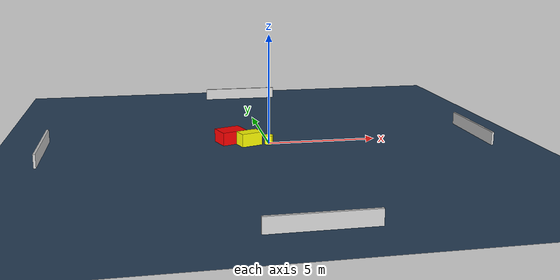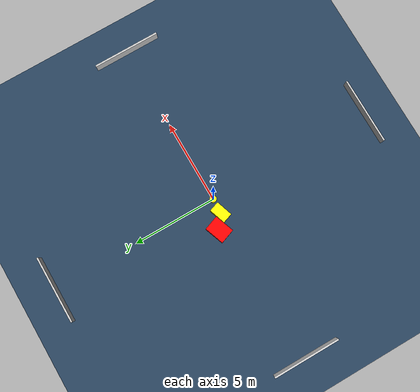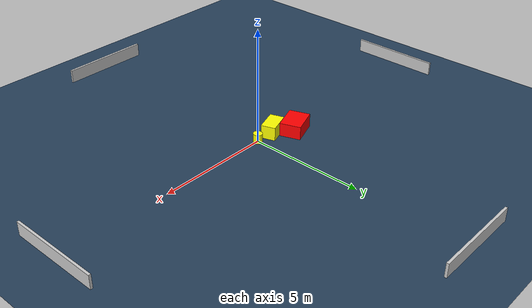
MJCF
<?xml version="1.0" ?>
<mujoco model="generated_environment">
  <option timestep="0.01" integrator="RK4" cone="elliptic"/>
  <default>
    <geom density="1"/>
  </default>
  <asset>
    <texture builtin="gradient" height="3072" name="skybox" rgb1="0.3 0.5 0.7" rgb2="0 0 0" type="skybox" width="512"/>
    <texture builtin="checker" height="300" name="groundplane" rgb1="0.2 0.3 0.4" rgb2="0.1 0.2 0.3" type="2d" width="300"/>
    <material name="groundplane" reflectance="0.2" texrepeat="5 5" texture="groundplane"/>
  </asset>
  <worldbody>
    <light dir="0 0 -1" directional="true" pos="0 0 1.5"/>
    <geom condim="3" friction="0.5 0.005 0.001" material="groundplane" name="floor" pos="0 0 0" size="0 0 0.05" type="plane"/>
    <body name="walls">
      <geom name="wall_1" condim="4" pos="-10.0 0.0 0.3" rgba="0.800000011920929 0.800000011920929 0.800000011920929 1.0" size="0.05 2.0 0.3" type="box"/>
      <geom name="wall_2" condim="4" pos="10.0 0.0 0.3" rgba="0.800000011920929 0.800000011920929 0.800000011920929 1.0" size="0.05 2.0 0.3" type="box"/>
      <geom name="wall_3" condim="4" pos="0.0 -10.0 0.3" rgba="0.800000011920929 0.800000011920929 0.800000011920929 1.0" size="2.0 0.05 0.3" type="box"/>
      <geom name="wall_4" condim="4" pos="0.0 10.0 0.3" rgba="0.800000011920929 0.800000011920929 0.800000011920929 1.0" size="2.0 0.05 0.3" type="box"/>
    </body>
    <body name="robot">
      <joint name="joint_x" type="slide" pos="0 0 0" axis="1 0 0"/>
      <joint name="joint_y" type="slide" pos="0 0 0" axis="0 1 0"/>
      <geom name="robot" type="cylinder" pos="0.0 0.0 0.2" size="0.2 0.2 0.0" mass="5.0" friction="1.0 0.005 0.0001" condim="4" rgba="1.0 1.0 0.0 1.0"/>
    </body>
    <body name="obstacle_1_movable">
      <geom name="obstacle_1_movable" condim="4" pos="-0.8895274419478192 0.028979943723305895 0.3" euler="0 0 288.6503077079368" friction="0.0 0.005 0.001" rgba="1.0 1.0 0.0 1.0" size="0.3115556107209648 0.5020767199869938 0.3" type="box" mass="0.1"/>
      <joint type="free"/>
    </body>
    <body name="obstacle_2_static">
      <geom name="obstacle_2_static" condim="4" pos="-1.6789834977066176 0.5806108052198551 0.3" euler="0 0 199.924847841638" friction="0.0 0.005 0.001" rgba="1.0 0.0 0.0 1.0" size="0.5966902539909458 0.45637895775605836 0.3" type="box"/>
    </body>
  </worldbody>
  <actuator>
    <motor name="actuator_x" joint="joint_x" gear="1" ctrlrange="-1 1"/>
    <motor name="actuator_y" joint="joint_y" gear="1" ctrlrange="-1 1"/>
  </actuator>
</mujoco>
